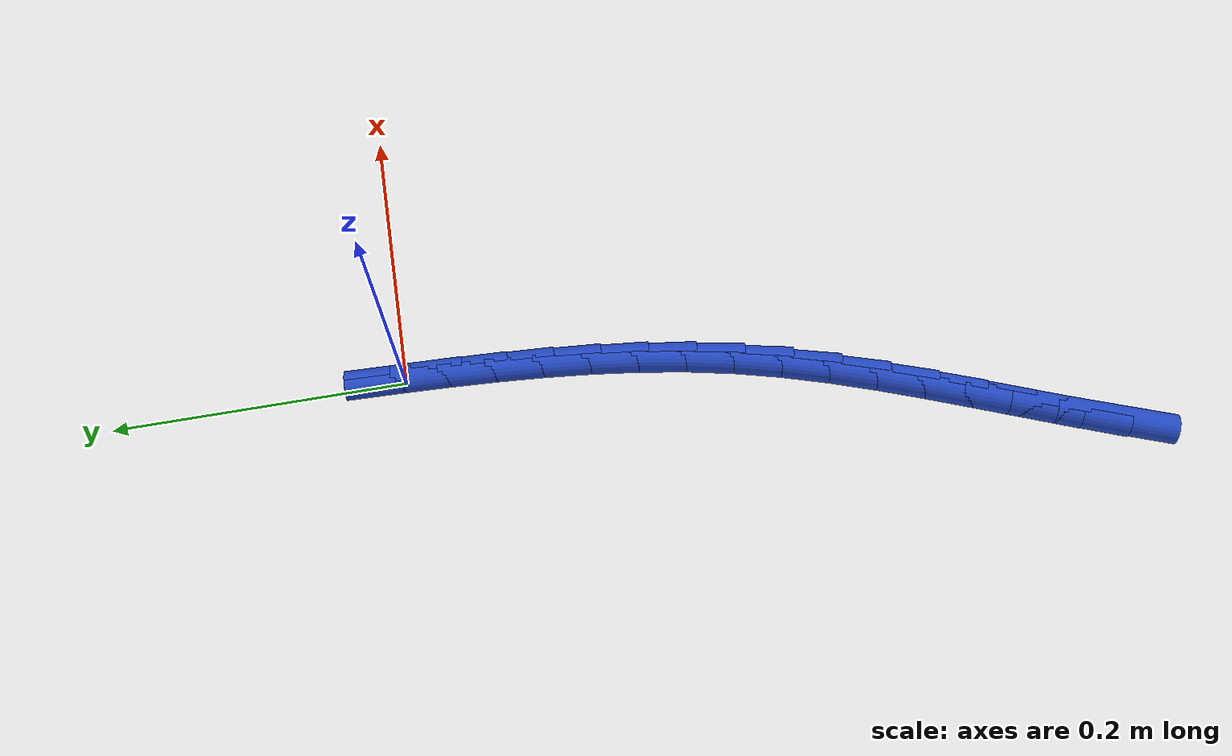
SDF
<sdf version="1.6">
 <world name="default">
  <model name="ground_plane">
   <static>1</static>
   <link name="link">
    <collision name="collision">
     <geometry><plane><normal>0 0 1</normal><size>100 100</size></plane></geometry>
     <surface><friction><ode><mu>100</mu><mu2>50</mu2></ode></friction></surface>
    </collision>
    <visual name="visual">
     <cast_shadows>0</cast_shadows>
     <geometry><plane><normal>0 0 1</normal><size>100 100</size></plane></geometry>
     <material>
      <script><uri>file://media/materials/scripts/gazebo.material</uri><name>Gazebo/WhiteGlow</name></script>
     </material>
    </visual>
   </link>
  </model>
  <model name="line">
   <link name="link_0">
    <pose>-2.168404344971009e-18 5.551115123125783e-17 0.01 0 1.57 1.5390261016661055</pose>
    <collision name="collision">
     <geometry><cylinder><radius>0.01</radius><length>0.08</length></cylinder></geometry>
    </collision>
    <visual name="visual">
     <material>
      <script><name>Gazebo/Blue</name><uri>file://media/materials/scripts/gazebo.material</uri></script>
     </material>
     <geometry><cylinder><radius>0.01</radius><length>0.08</length></cylinder></geometry>
    </visual>
   </link>
   <link name="link_255">
    <pose>-0.11388143701693848 -0.46866722271297917 0.01 0 1.57 1.206290125910599</pose>
    <collision name="collision">
     <geometry><cylinder><radius>0.01</radius><length>0.08</length></cylinder></geometry>
    </collision>
    <visual name="visual">
     <material>
      <script><name>Gazebo/Blue</name><uri>file://media/materials/scripts/gazebo.material</uri></script>
     </material>
     <geometry><cylinder><radius>0.01</radius><length>0.08</length></cylinder></geometry>
    </visual>
   </link>
   <link name="link_256">
    <pose>-0.10281937275354704 -0.4396752617887972 0.01 0 1.57 1.1909977333533222</pose>
    <collision name="collision">
     <geometry><cylinder><radius>0.01</radius><length>0.08</length></cylinder></geometry>
    </collision>
    <visual name="visual">
     <material>
      <script><name>Gazebo/Blue</name><uri>file://media/materials/scripts/gazebo.material</uri></script>
     </material>
     <geometry><cylinder><radius>0.01</radius><length>0.08</length></cylinder></geometry>
    </visual>
   </link>
   <link name="link_257">
    <pose>-0.09110186984515242 -0.4103212703610186 0.01 0 1.57 1.1855940446224955</pose>
    <collision name="collision">
     <geometry><cylinder><radius>0.01</radius><length>0.08</length></cylinder></geometry>
    </collision>
    <visual name="visual">
     <material>
      <script><name>Gazebo/Blue</name><uri>file://media/materials/scripts/gazebo.material</uri></script>
     </material>
     <geometry><cylinder><radius>0.01</radius><length>0.08</length></cylinder></geometry>
    </visual>
   </link>
   <link name="link_258">
    <pose>-0.07904499962698255 -0.3805848146478386 0.01 0 1.57 1.1903489660543363</pose>
    <collision name="collision">
     <geometry><cylinder><radius>0.01</radius><length>0.08</length></cylinder></geometry>
    </collision>
    <visual name="visual">
     <material>
      <script><name>Gazebo/Blue</name><uri>file://media/materials/scripts/gazebo.material</uri></script>
     </material>
     <geometry><cylinder><radius>0.01</radius><length>0.08</length></cylinder></geometry>
    </visual>
   </link>
   <link name="link_259">
    <pose>-0.06699286990280236 -0.3504493328474172 0.01 0 1.57 1.2049670530051773</pose>
    <collision name="collision">
     <geometry><cylinder><radius>0.01</radius><length>0.08</length></cylinder></geometry>
    </collision>
    <visual name="visual">
     <material>
      <script><name>Gazebo/Blue</name><uri>file://media/materials/scripts/gazebo.material</uri></script>
     </material>
     <geometry><cylinder><radius>0.01</radius><length>0.08</length></cylinder></geometry>
    </visual>
   </link>
   <link name="link_260">
    <pose>-0.05528958847637524 -0.31989826315791103 0.01 0 1.57 1.2293507729472068</pose>
    <collision name="collision">
     <geometry><cylinder><radius>0.01</radius><length>0.08</length></cylinder></geometry>
    </collision>
    <visual name="visual">
     <material>
      <script><name>Gazebo/Blue</name><uri>file://media/materials/scripts/gazebo.material</uri></script>
     </material>
     <geometry><cylinder><radius>0.01</radius><length>0.08</length></cylinder></geometry>
    </visual>
   </link>
   <link name="link_261">
    <pose>-0.044279263151466075 -0.28891504377748023 0.01 0 1.57 1.2635471086859298</pose>
    <collision name="collision">
     <geometry><cylinder><radius>0.01</radius><length>0.08</length></cylinder></geometry>
    </collision>
    <visual name="visual">
     <material>
      <script><name>Gazebo/Blue</name><uri>file://media/materials/scripts/gazebo.material</uri></script>
     </material>
     <geometry><cylinder><radius>0.01</radius><length>0.08</length></cylinder></geometry>
    </visual>
   </link>
   <link name="link_262">
    <pose>-0.034306001731838405 -0.25748311290428144 0.01 0 1.57 1.3076623645864984</pose>
    <collision name="collision">
     <geometry><cylinder><radius>0.01</radius><length>0.08</length></cylinder></geometry>
    </collision>
    <visual name="visual">
     <material>
      <script><name>Gazebo/Blue</name><uri>file://media/materials/scripts/gazebo.material</uri></script>
     </material>
     <geometry><cylinder><radius>0.01</radius><length>0.08</length></cylinder></geometry>
    </visual>
   </link>
   <link name="link_263">
    <pose>-0.025713564020942558 -0.22558603591044984 0.01 0 1.57 1.3573683323502754</pose>
    <collision name="collision">
     <geometry><cylinder><radius>0.01</radius><length>0.08</length></cylinder></geometry>
    </collision>
    <visual name="visual">
     <material>
      <script><name>Gazebo/Blue</name><uri>file://media/materials/scripts/gazebo.material</uri></script>
     </material>
     <geometry><cylinder><radius>0.01</radius><length>0.08</length></cylinder></geometry>
    </visual>
   </link>
   <link name="link_264">
    <pose>-0.018707150352325525 -0.1932580136354553 0.01 0 1.57 1.4017168389377663</pose>
    <collision name="collision">
     <geometry><cylinder><radius>0.01</radius><length>0.08</length></cylinder></geometry>
    </collision>
    <visual name="visual">
     <material>
      <script><name>Gazebo/Blue</name><uri>file://media/materials/scripts/gazebo.material</uri></script>
     </material>
     <geometry><cylinder><radius>0.01</radius><length>0.08</length></cylinder></geometry>
    </visual>
   </link>
   <link name="link_265">
    <pose>-0.013142526431848147 -0.16066094505221334 0.01 0 1.57 1.439345832970625</pose>
    <collision name="collision">
     <geometry><cylinder><radius>0.01</radius><length>0.08</length></cylinder></geometry>
    </collision>
    <visual name="visual">
     <material>
      <script><name>Gazebo/Blue</name><uri>file://media/materials/scripts/gazebo.material</uri></script>
     </material>
     <geometry><cylinder><radius>0.01</radius><length>0.08</length></cylinder></geometry>
    </visual>
   </link>
   <link name="link_266">
    <pose>-0.008821227886608577 -0.12797654708894265 0.01 0 1.57 1.4705979737462516</pose>
    <collision name="collision">
     <geometry><cylinder><radius>0.01</radius><length>0.08</length></cylinder></geometry>
    </collision>
    <visual name="visual">
     <material>
      <script><name>Gazebo/Blue</name><uri>file://media/materials/scripts/gazebo.material</uri></script>
     </material>
     <geometry><cylinder><radius>0.01</radius><length>0.08</length></cylinder></geometry>
    </visual>
   </link>
   <link name="link_267">
    <pose>-0.005544790343705573 -0.09538653667386598 0.01 0 1.57 1.4957365179754853</pose>
    <collision name="collision">
     <geometry><cylinder><radius>0.01</radius><length>0.08</length></cylinder></geometry>
    </collision>
    <visual name="visual">
     <material>
      <script><name>Gazebo/Blue</name><uri>file://media/materials/scripts/gazebo.material</uri></script>
     </material>
     <geometry><cylinder><radius>0.01</radius><length>0.08</length></cylinder></geometry>
    </visual>
   </link>
   <link name="link_268">
    <pose>-0.003114749430237481 -0.063072630735203 0.01 0 1.57 1.5149120870076542</pose>
    <collision name="collision">
     <geometry><cylinder><radius>0.01</radius><length>0.08</length></cylinder></geometry>
    </collision>
    <visual name="visual">
     <material>
      <script><name>Gazebo/Blue</name><uri>file://media/materials/scripts/gazebo.material</uri></script>
     </material>
     <geometry><cylinder><radius>0.01</radius><length>0.08</length></cylinder></geometry>
    </visual>
   </link>
   <link name="link_269">
    <pose>-0.0013326407733027599 -0.031216546201173506 0.01 0 1.57 1.5281320265831024</pose>
    <collision name="collision">
     <geometry><cylinder><radius>0.01</radius><length>0.08</length></cylinder></geometry>
    </collision>
    <visual name="visual">
     <material>
      <script><name>Gazebo/Blue</name><uri>file://media/materials/scripts/gazebo.material</uri></script>
     </material>
     <geometry><cylinder><radius>0.01</radius><length>0.08</length></cylinder></geometry>
    </visual>
   </link>
   <link name="link_270">
    <pose>-1.0083080204115191e-17 -1.1796119636642288e-16 0.01 0 1.57 1.5352256511457503</pose>
    <collision name="collision">
     <geometry><cylinder><radius>0.01</radius><length>0.08</length></cylinder></geometry>
    </collision>
    <visual name="visual">
     <material>
      <script><name>Gazebo/Blue</name><uri>file://media/materials/scripts/gazebo.material</uri></script>
     </material>
     <geometry><cylinder><radius>0.01</radius><length>0.08</length></cylinder></geometry>
    </visual>
   </link>
  </model>
 </world>
</sdf>
